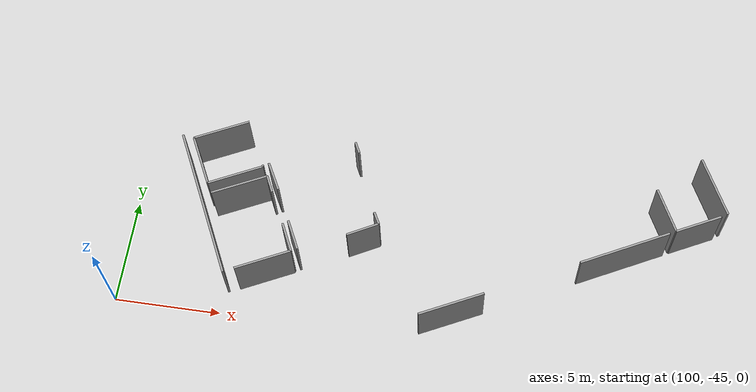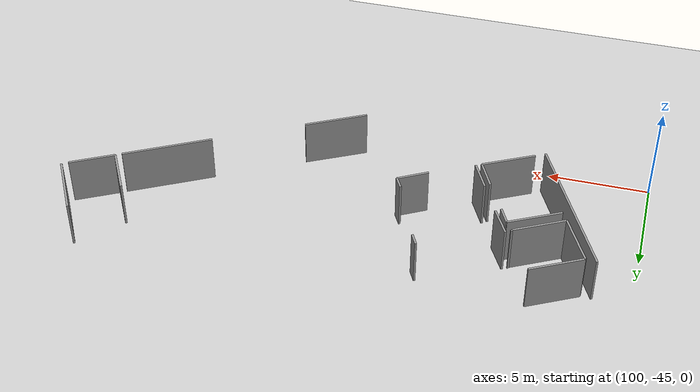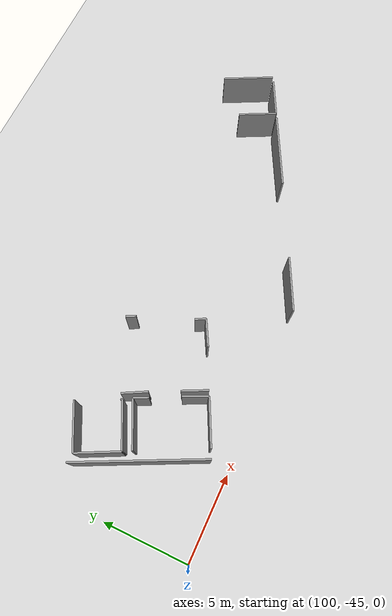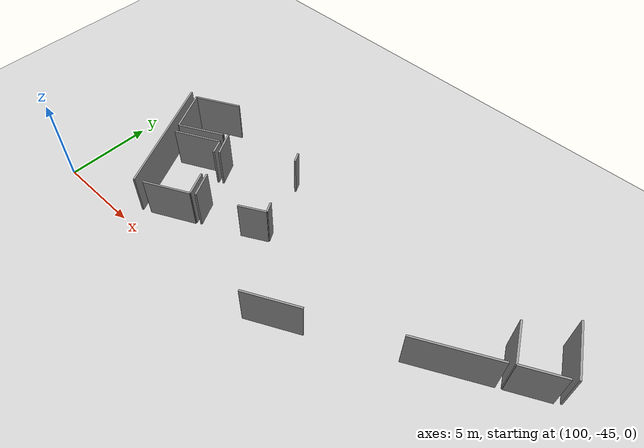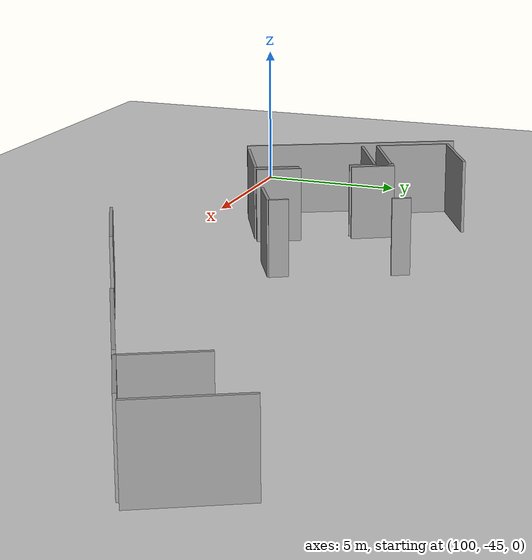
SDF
<sdf version="1.6">
 <world name="default">
  <model name="ground_plane">
   <static>1</static>
   <link name="link">
    <collision name="collision">
     <geometry><plane><normal>0 0 1</normal><size>100 100</size></plane></geometry>
     <surface><friction><ode><mu>100</mu><mu2>50</mu2></ode></friction></surface>
    </collision>
    <visual name="visual">
     <cast_shadows>0</cast_shadows>
     <geometry><plane><normal>0 0 1</normal><size>100 100</size></plane></geometry>
     <material>
      <script><uri>file://media/materials/scripts/gazebo.material</uri><name>Gazebo/Grey</name></script>
     </material>
    </visual>
   </link>
  </model>
  <model name="0510045922_A-40">
   <static>1</static>
   <link name="Wall_904">
    <collision name="Wall_904_Collision">
     <geometry><box><size>3.01193766974 0.1 2.5</size></box></geometry>
     <pose>1.50596883487 0 1.25 0 0 0</pose>
    </collision>
    <visual name="Wall_904_Visual">
     <pose>1.50596883487 0 1.25 0 0 0</pose>
     <geometry><box><size>3.01193766974 0.1 2.5</size></box></geometry>
     <material>
      <script><uri>file://media/materials/scripts/gazebo.material</uri><name>Gazebo/Grey</name></script>
      <ambient>1 1 1 1</ambient>
     </material>
    </visual>
    <pose>262.035762852 -138.888326873 0 0 0 2.04206758037</pose>
   </link>
   <link name="Wall_911">
    <collision name="Wall_911_Collision">
     <geometry><box><size>4.45707759081 0.1 2.5</size></box></geometry>
     <pose>2.22853879541 0 1.25 0 0 0</pose>
    </collision>
    <visual name="Wall_911_Visual">
     <pose>2.22853879541 0 1.25 0 0 0</pose>
     <geometry><box><size>4.45707759081 0.1 2.5</size></box></geometry>
     <material>
      <script><uri>file://media/materials/scripts/gazebo.material</uri><name>Gazebo/Grey</name></script>
      <ambient>1 1 1 1</ambient>
     </material>
    </visual>
    <pose>259.438063163 -140.25072123 0 0 0 -2.66361148565</pose>
   </link>
   <link name="Wall_912">
    <collision name="Wall_912_Collision">
     <geometry><box><size>3.15849747284 0.1 2.5</size></box></geometry>
     <pose>1.57924873642 0 1.25 0 0 0</pose>
    </collision>
    <visual name="Wall_912_Visual">
     <pose>1.57924873642 0 1.25 0 0 0</pose>
     <geometry><box><size>3.15849747284 0.1 2.5</size></box></geometry>
     <material>
      <script><uri>file://media/materials/scripts/gazebo.material</uri><name>Gazebo/Grey</name></script>
      <ambient>1 1 1 1</ambient>
     </material>
    </visual>
    <pose>251.31199085 -144.437542098 0 0 0 -2.67535381739</pose>
   </link>
   <link name="Wall_914">
    <collision name="Wall_914_Collision">
     <geometry><box><size>0.599280266534 0.1 2.5</size></box></geometry>
     <pose>0.299640133267 0 1.25 0 0 0</pose>
    </collision>
    <visual name="Wall_914_Visual">
     <pose>0.299640133267 0 1.25 0 0 0</pose>
     <geometry><box><size>0.599280266534 0.1 2.5</size></box></geometry>
     <material>
      <script><uri>file://media/materials/scripts/gazebo.material</uri><name>Gazebo/Grey</name></script>
      <ambient>1 1 1 1</ambient>
     </material>
    </visual>
    <pose>244.545771113 -138.165190316 0 0 0 2.03709946825</pose>
   </link>
   <link name="Wall_917">
    <collision name="Wall_917_Collision">
     <geometry><box><size>2.25392136199 0.1 2.5</size></box></geometry>
     <pose>1.12696068099 0 1.25 0 0 0</pose>
    </collision>
    <visual name="Wall_917_Visual">
     <pose>1.12696068099 0 1.25 0 0 0</pose>
     <geometry><box><size>2.25392136199 0.1 2.5</size></box></geometry>
     <material>
      <script><uri>file://media/materials/scripts/gazebo.material</uri><name>Gazebo/Grey</name></script>
      <ambient>1 1 1 1</ambient>
     </material>
    </visual>
    <pose>259.71511724 -140.10202707 0 0 0 2.04004202136</pose>
   </link>
   <link name="Wall_921">
    <collision name="Wall_921_Collision">
     <geometry><box><size>2.28410695073 0.1 2.5</size></box></geometry>
     <pose>1.14205347536 0 1.25 0 0 0</pose>
    </collision>
    <visual name="Wall_921_Visual">
     <pose>1.14205347536 0 1.25 0 0 0</pose>
     <geometry><box><size>2.28410695073 0.1 2.5</size></box></geometry>
     <material>
      <script><uri>file://media/materials/scripts/gazebo.material</uri><name>Gazebo/Grey</name></script>
      <ambient>1 1 1 1</ambient>
     </material>
    </visual>
    <pose>261.748541653 -139.061676304 0 0 0 -2.66868835383</pose>
   </link>
   <link name="Wall_932">
    <collision name="Wall_932_Collision">
     <geometry><box><size>2.73403610541 0.1 2.5</size></box></geometry>
     <pose>1.36701805271 0 1.25 0 0 0</pose>
    </collision>
    <visual name="Wall_932_Visual">
     <pose>1.36701805271 0 1.25 0 0 0</pose>
     <geometry><box><size>2.73403610541 0.1 2.5</size></box></geometry>
     <material>
      <script><uri>file://media/materials/scripts/gazebo.material</uri><name>Gazebo/Grey</name></script>
      <ambient>1 1 1 1</ambient>
     </material>
    </visual>
    <pose>238.013395183 -141.221173032 0 0 0 0.463813915336</pose>
   </link>
   <link name="Wall_933">
    <collision name="Wall_933_Collision">
     <geometry><box><size>0.871459708961 0.1 2.5</size></box></geometry>
     <pose>0.43572985448 0 1.25 0 0 0</pose>
    </collision>
    <visual name="Wall_933_Visual">
     <pose>0.43572985448 0 1.25 0 0 0</pose>
     <geometry><box><size>0.871459708961 0.1 2.5</size></box></geometry>
     <material>
      <script><uri>file://media/materials/scripts/gazebo.material</uri><name>Gazebo/Grey</name></script>
      <ambient>1 1 1 1</ambient>
     </material>
    </visual>
    <pose>240.458588041 -139.998068247 0 0 0 -1.1179753232</pose>
   </link>
   <link name="Wall_934">
    <collision name="Wall_934_Collision">
     <geometry><box><size>1.45715825656 0.1 2.5</size></box></geometry>
     <pose>0.728579128279 0 1.25 0 0 0</pose>
    </collision>
    <visual name="Wall_934_Visual">
     <pose>0.728579128279 0 1.25 0 0 0</pose>
     <geometry><box><size>1.45715825656 0.1 2.5</size></box></geometry>
     <material>
      <script><uri>file://media/materials/scripts/gazebo.material</uri><name>Gazebo/Grey</name></script>
      <ambient>1 1 1 1</ambient>
     </material>
    </visual>
    <pose>241.622723518 -142.309309271 0 0 0 -1.1195525129</pose>
   </link>
   <link name="Wall_935">
    <collision name="Wall_935_Collision">
     <geometry><box><size>2.70437015312 0.1 2.5</size></box></geometry>
     <pose>1.35218507656 0 1.25 0 0 0</pose>
    </collision>
    <visual name="Wall_935_Visual">
     <pose>1.35218507656 0 1.25 0 0 0</pose>
     <geometry><box><size>2.70437015312 0.1 2.5</size></box></geometry>
     <material>
      <script><uri>file://media/materials/scripts/gazebo.material</uri><name>Gazebo/Grey</name></script>
      <ambient>1 1 1 1</ambient>
     </material>
    </visual>
    <pose>242.258168647 -143.62061384 0 0 0 -2.67659999895</pose>
   </link>
   <link name="Wall_936">
    <collision name="Wall_936_Collision">
     <geometry><box><size>2.53265598679 0.1 2.5</size></box></geometry>
     <pose>1.26632799339 0 1.25 0 0 0</pose>
    </collision>
    <visual name="Wall_936_Visual">
     <pose>1.26632799339 0 1.25 0 0 0</pose>
     <geometry><box><size>2.53265598679 0.1 2.5</size></box></geometry>
     <material>
      <script><uri>file://media/materials/scripts/gazebo.material</uri><name>Gazebo/Grey</name></script>
      <ambient>1 1 1 1</ambient>
     </material>
    </visual>
    <pose>237.754133571 -140.746622609 0 0 0 2.0405031076</pose>
   </link>
   <link name="Wall_937">
    <collision name="Wall_937_Collision">
     <geometry><box><size>2.73144920314 0.1 2.5</size></box></geometry>
     <pose>1.36572460157 0 1.25 0 0 0</pose>
    </collision>
    <visual name="Wall_937_Visual">
     <pose>1.36572460157 0 1.25 0 0 0</pose>
     <geometry><box><size>2.73144920314 0.1 2.5</size></box></geometry>
     <material>
      <script><uri>file://media/materials/scripts/gazebo.material</uri><name>Gazebo/Grey</name></script>
      <ambient>1 1 1 1</ambient>
     </material>
    </visual>
    <pose>236.607790557 -138.48825062 0 0 0 0.468142147798</pose>
   </link>
   <link name="Wall_939">
    <collision name="Wall_939_Collision">
     <geometry><box><size>0.0859948623653 0.1 2.5</size></box></geometry>
     <pose>0.0429974311827 0 1.25 0 0 0</pose>
    </collision>
    <visual name="Wall_939_Visual">
     <pose>0.0429974311827 0 1.25 0 0 0</pose>
     <geometry><box><size>0.0859948623653 0.1 2.5</size></box></geometry>
     <material>
      <script><uri>file://media/materials/scripts/gazebo.material</uri><name>Gazebo/Grey</name></script>
      <ambient>1 1 1 1</ambient>
     </material>
    </visual>
    <pose>240.128156574 -139.448026943 0 0 0 -1.14416883367</pose>
   </link>
   <link name="Wall_940">
    <collision name="Wall_940_Collision">
     <geometry><box><size>2.70099315246 0.1 2.5</size></box></geometry>
     <pose>1.35049657623 0 1.25 0 0 0</pose>
    </collision>
    <visual name="Wall_940_Visual">
     <pose>1.35049657623 0 1.25 0 0 0</pose>
     <geometry><box><size>2.70099315246 0.1 2.5</size></box></geometry>
     <material>
      <script><uri>file://media/materials/scripts/gazebo.material</uri><name>Gazebo/Grey</name></script>
      <ambient>1 1 1 1</ambient>
     </material>
    </visual>
    <pose>240.163741501 -139.526313783 0 0 0 -2.67281062567</pose>
   </link>
   <link name="Wall_946">
    <collision name="Wall_946_Collision">
     <geometry><box><size>7.45465183702 0.1 2.5</size></box></geometry>
     <pose>3.72732591851 0 1.25 0 0 0</pose>
    </collision>
    <visual name="Wall_946_Visual">
     <pose>3.72732591851 0 1.25 0 0 0</pose>
     <geometry><box><size>7.45465183702 0.1 2.5</size></box></geometry>
     <material>
      <script><uri>file://media/materials/scripts/gazebo.material</uri><name>Gazebo/Grey</name></script>
      <ambient>1 1 1 1</ambient>
     </material>
    </visual>
    <pose>236.061307746 -138.404880219 0 0 0 -1.11080835379</pose>
   </link>
   <link name="Wall_978">
    <collision name="Wall_978_Collision">
     <geometry><box><size>1.49910491398 0.1 2.5</size></box></geometry>
     <pose>0.749552456992 0 1.25 0 0 0</pose>
    </collision>
    <visual name="Wall_978_Visual">
     <pose>0.749552456992 0 1.25 0 0 0</pose>
     <geometry><box><size>1.49910491398 0.1 2.5</size></box></geometry>
     <material>
      <script><uri>file://media/materials/scripts/gazebo.material</uri><name>Gazebo/Grey</name></script>
      <ambient>1 1 1 1</ambient>
     </material>
    </visual>
    <pose>242.532680943 -143.481578446 0 0 0 2.03489889482</pose>
   </link>
   <link name="Wall_979">
    <collision name="Wall_979_Collision">
     <geometry><box><size>1.4638524456 0.1 2.5</size></box></geometry>
     <pose>0.7319262228 0 1.25 0 0 0</pose>
    </collision>
    <visual name="Wall_979_Visual">
     <pose>0.7319262228 0 1.25 0 0 0</pose>
     <geometry><box><size>1.4638524456 0.1 2.5</size></box></geometry>
     <material>
      <script><uri>file://media/materials/scripts/gazebo.material</uri><name>Gazebo/Grey</name></script>
      <ambient>1 1 1 1</ambient>
     </material>
    </visual>
    <pose>241.099116731 -140.61216242 0 0 0 2.06465537473</pose>
   </link>
   <link name="Wall_1028">
    <collision name="Wall_1028_Collision">
     <geometry><box><size>0.624617467023 0.1 2.5</size></box></geometry>
     <pose>0.312308733511 0 1.25 0 0 0</pose>
    </collision>
    <visual name="Wall_1028_Visual">
     <pose>0.312308733511 0 1.25 0 0 0</pose>
     <geometry><box><size>0.624617467023 0.1 2.5</size></box></geometry>
     <material>
      <script><uri>file://media/materials/scripts/gazebo.material</uri><name>Gazebo/Grey</name></script>
      <ambient>1 1 1 1</ambient>
     </material>
    </visual>
    <pose>245.745491517 -141.146698863 0 0 0 -1.07456738917</pose>
   </link>
   <link name="Wall_1029">
    <collision name="Wall_1029_Collision">
     <geometry><box><size>1.58715266186 0.1 2.5</size></box></geometry>
     <pose>0.793576330931 0 1.25 0 0 0</pose>
    </collision>
    <visual name="Wall_1029_Visual">
     <pose>0.793576330931 0 1.25 0 0 0</pose>
     <geometry><box><size>1.58715266186 0.1 2.5</size></box></geometry>
     <material>
      <script><uri>file://media/materials/scripts/gazebo.material</uri><name>Gazebo/Grey</name></script>
      <ambient>1 1 1 1</ambient>
     </material>
    </visual>
    <pose>246.042879837 -141.695977632 0 0 0 -2.64499388</pose>
   </link>
   <pose>-134.15 101.210036856 0 0 0 0</pose>
  </model>
 </world>
</sdf>
